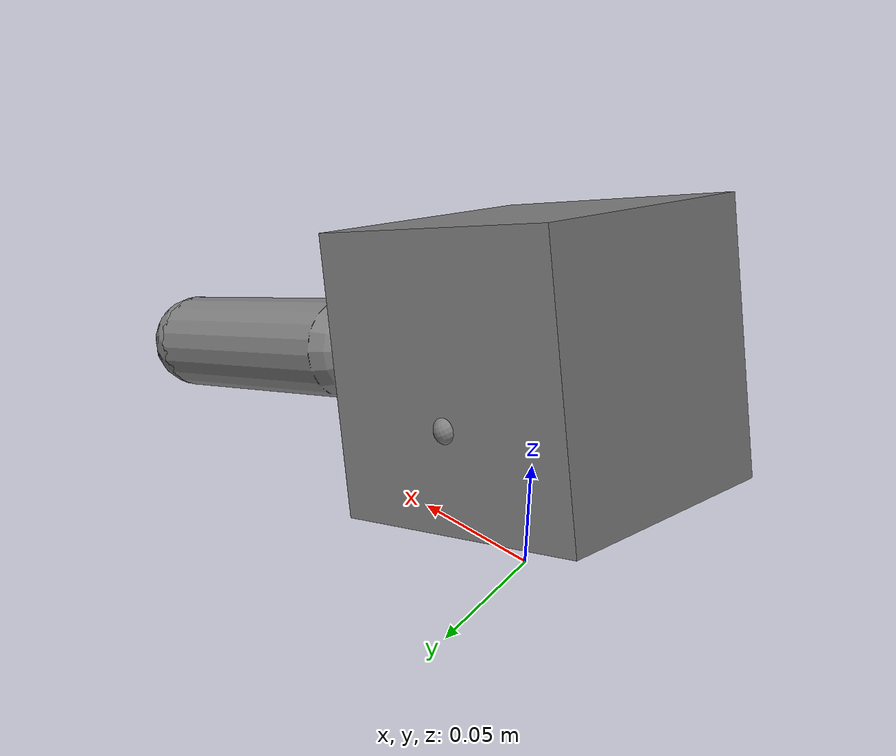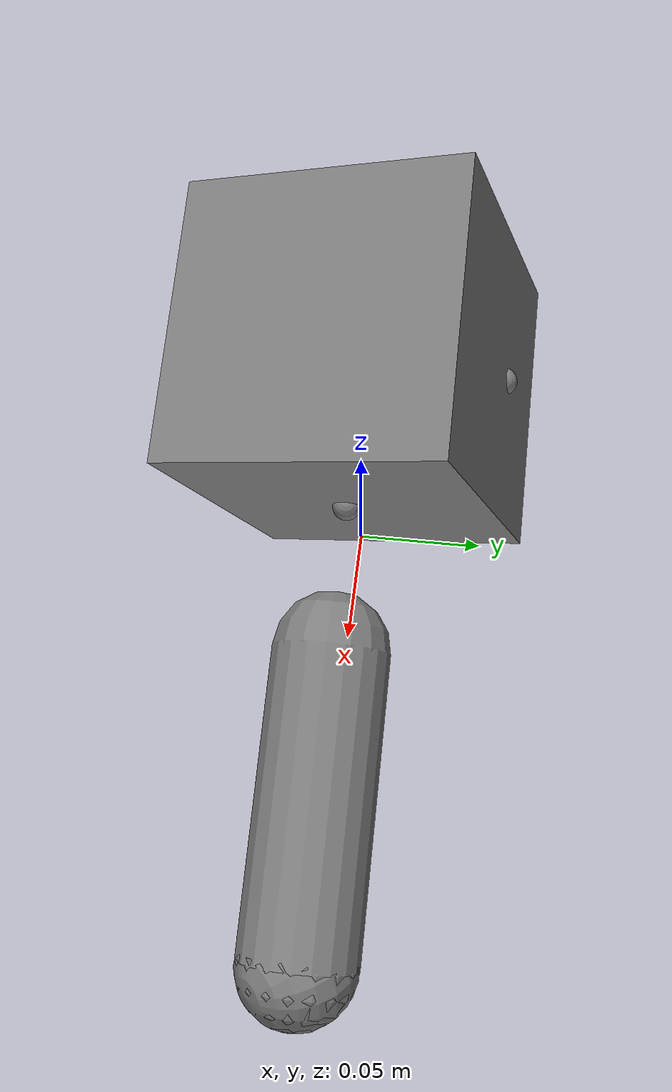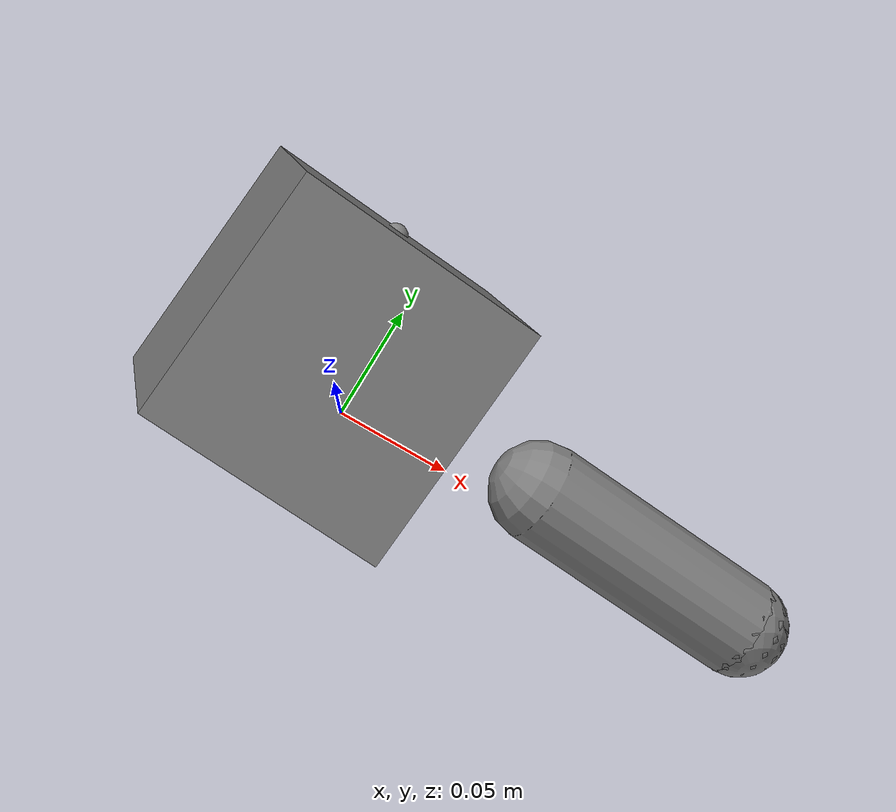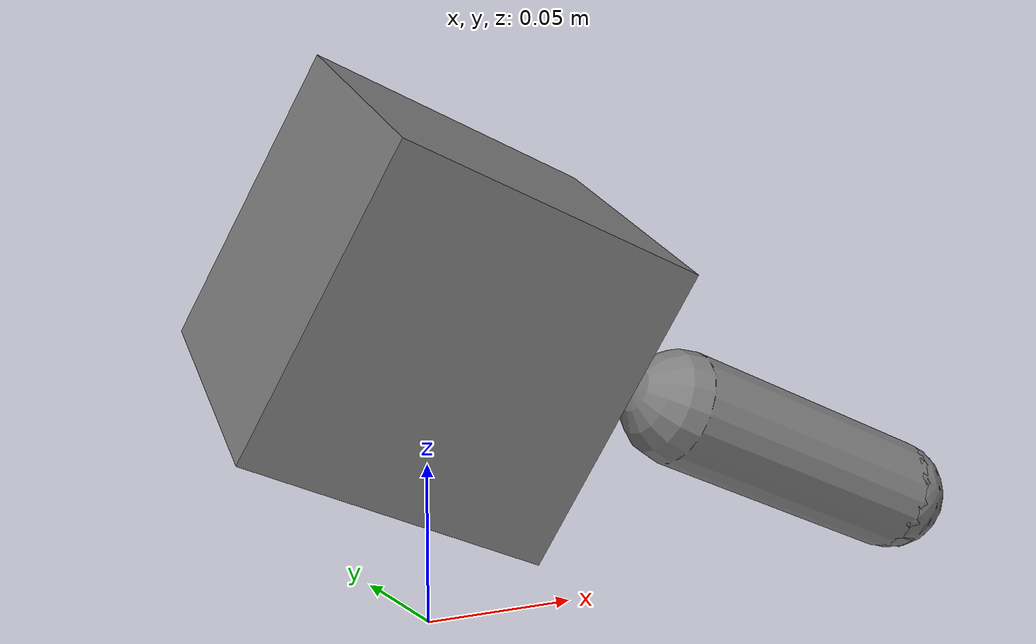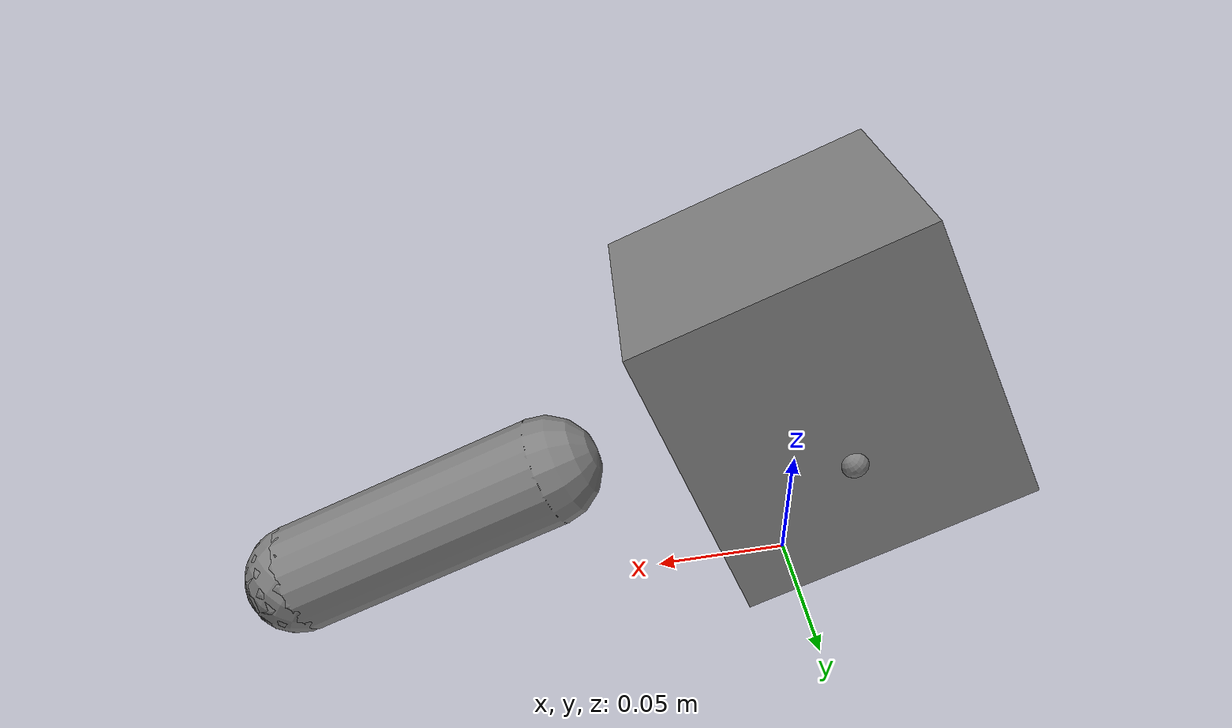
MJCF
<mujoco model="rad_asset">
  <compiler angle="radian"/>
  <default>
    <joint range="-0.5 0.5" ref="0.1" springref="0.05"/>
    <geom euler="0.3 0 0"/>
    <default class="slider">
      <joint type="slide" range="-0.02 0.07"/>
      <default class="slider_ref">
        <joint ref="0.01" springref="0.02"/>
      </default>
    </default>
    <default class="turn">
      <joint type="hinge" range="-1.2 1.2" ref="-0.2"/>
      <site euler="0 0.25 0"/>
    </default>
  </default>
  <worldbody>
    <body name="root" pos="0 0 0.1" euler="0 0.4 0">
      <inertial pos="0 0 0" mass="1" diaginertia="0.01 0.01 0.01" euler="0.1 0.2 0.3"/>
      <joint name="h_root" axis="0 1 0"/>
      <geom name="g_root" type="box" size="0.05 0.05 0.05"/>
      <site name="s_root" pos="0.05 0 0" axisangle="0 0 1 0.7"/>
      <site name="s_turn" class="turn" pos="0 0.05 0"/>
      <camera name="c_root" pos="0 -1 0" euler="1.2 0 0" fovy="50"/>
      <body name="link" pos="0.1 0 0" childclass="turn">
        <joint name="h_link" axis="0 0 1"/>
        <joint name="h_explicit" type="hinge" axis="1 0 0" range="-2 2" ref="0.3" springref="-0.1"/>
        <geom name="g_link" type="capsule" fromto="0 0 0 0.1 0 0" size="0.02" euler="0 0 1.1"/>
        <body name="tip" pos="0.1 0 0" axisangle="1 0 0 0.9">
          <joint name="s_tip" class="slider" axis="1 0 0"/>
          <joint name="s_tip2" class="slider_ref" axis="0 1 0"/>
          <joint name="h_odd" type="hinge" class="slider" axis="0 0 1"/>
          <joint name="b_tip" type="ball" range="0 0.6"/>
          <geom name="g_tip" type="sphere" size="0.02" axisangle="0 1 0 0.5"/>
        </body>
      </body>
    </body>
  </worldbody>
</mujoco>
